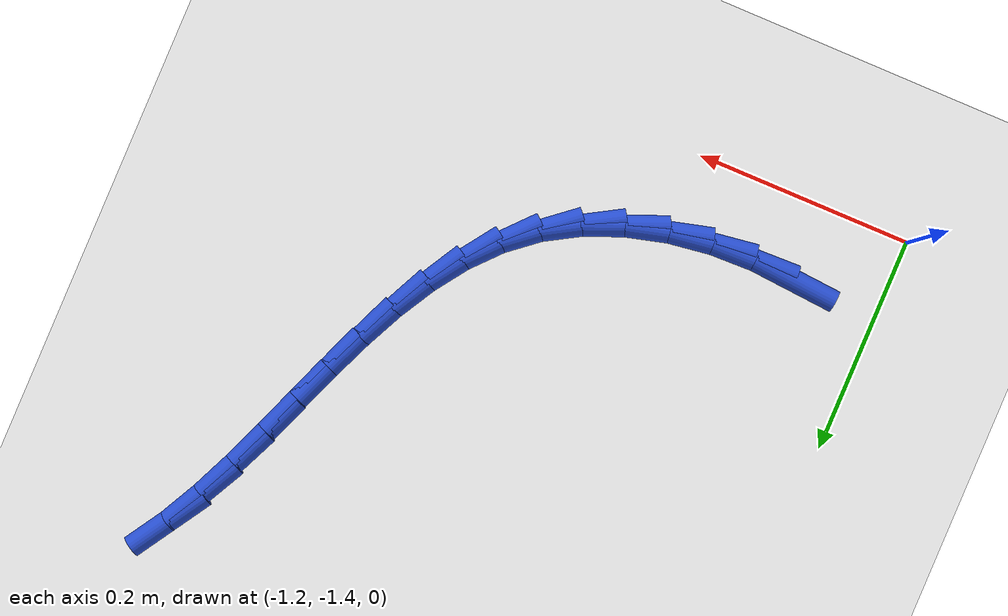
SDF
<sdf version="1.6">
 <world name="default">
  <model name="ground_plane">
   <static>1</static>
   <link name="link">
    <collision name="collision">
     <geometry><plane><normal>0 0 1</normal><size>100 100</size></plane></geometry>
     <surface><friction><ode><mu>100</mu><mu2>50</mu2></ode></friction></surface>
    </collision>
    <visual name="visual">
     <cast_shadows>0</cast_shadows>
     <geometry><plane><normal>0 0 1</normal><size>100 100</size></plane></geometry>
     <material>
      <script><uri>file://media/materials/scripts/gazebo.material</uri><name>Gazebo/WhiteGlow</name></script>
     </material>
    </visual>
   </link>
  </model>
  <model name="line">
   <link name="link_161">
    <pose>-1.120541253782351 -1.3289046032856062 0.01 0 1.57 -0.07832779690518629</pose>
    <collision name="collision">
     <geometry><cylinder><radius>0.01</radius><length>0.08</length></cylinder></geometry>
    </collision>
    <visual name="visual">
     <material>
      <script><name>Gazebo/Blue</name><uri>file://media/materials/scripts/gazebo.material</uri></script>
     </material>
     <geometry><cylinder><radius>0.01</radius><length>0.08</length></cylinder></geometry>
    </visual>
   </link>
   <link name="link_162">
    <pose>-1.0804626098823482 -1.332050311026011 0.01 0 1.57 0.03149966678447498</pose>
    <collision name="collision">
     <geometry><cylinder><radius>0.01</radius><length>0.08</length></cylinder></geometry>
    </collision>
    <visual name="visual">
     <material>
      <script><name>Gazebo/Blue</name><uri>file://media/materials/scripts/gazebo.material</uri></script>
     </material>
     <geometry><cylinder><radius>0.01</radius><length>0.08</length></cylinder></geometry>
    </visual>
   </link>
   <link name="link_163">
    <pose>-1.0400941681756766 -1.3307782978263454 0.01 0 1.57 0.14227047868223458</pose>
    <collision name="collision">
     <geometry><cylinder><radius>0.01</radius><length>0.08</length></cylinder></geometry>
    </collision>
    <visual name="visual">
     <material>
      <script><name>Gazebo/Blue</name><uri>file://media/materials/scripts/gazebo.material</uri></script>
     </material>
     <geometry><cylinder><radius>0.01</radius><length>0.08</length></cylinder></geometry>
    </visual>
   </link>
   <link name="link_164">
    <pose>-1.0003452240024857 -1.3250847302858948 0.01 0 1.57 0.25881628237013193</pose>
    <collision name="collision">
     <geometry><cylinder><radius>0.01</radius><length>0.08</length></cylinder></geometry>
    </collision>
    <visual name="visual">
     <material>
      <script><name>Gazebo/Blue</name><uri>file://media/materials/scripts/gazebo.material</uri></script>
     </material>
     <geometry><cylinder><radius>0.01</radius><length>0.08</length></cylinder></geometry>
    </visual>
   </link>
   <link name="link_165">
    <pose>-0.9621250727029274 -1.3149657750039432 0.01 0 1.57 0.38616361591741255</pose>
    <collision name="collision">
     <geometry><cylinder><radius>0.01</radius><length>0.08</length></cylinder></geometry>
    </collision>
    <visual name="visual">
     <material>
      <script><name>Gazebo/Blue</name><uri>file://media/materials/scripts/gazebo.material</uri></script>
     </material>
     <geometry><cylinder><radius>0.01</radius><length>0.08</length></cylinder></geometry>
    </visual>
   </link>
   <link name="link_166">
    <pose>-0.9263430096171503 -1.3004175985797757 0.01 0 1.57 0.5294765471716719</pose>
    <collision name="collision">
     <geometry><cylinder><radius>0.01</radius><length>0.08</length></cylinder></geometry>
    </collision>
    <visual name="visual">
     <material>
      <script><name>Gazebo/Blue</name><uri>file://media/materials/scripts/gazebo.material</uri></script>
     </material>
     <geometry><cylinder><radius>0.01</radius><length>0.08</length></cylinder></geometry>
    </visual>
   </link>
   <link name="link_167">
    <pose>-0.8939083300853052 -1.2814363676126774 0.01 0 1.57 0.6885004018710783</pose>
    <collision name="collision">
     <geometry><cylinder><radius>0.01</radius><length>0.08</length></cylinder></geometry>
    </collision>
    <visual name="visual">
     <material>
      <script><name>Gazebo/Blue</name><uri>file://media/materials/scripts/gazebo.material</uri></script>
     </material>
     <geometry><cylinder><radius>0.01</radius><length>0.08</length></cylinder></geometry>
    </visual>
   </link>
   <link name="link_168">
    <pose>-0.8655410999000331 -1.258095296434578 0.01 0 1.57 0.8363135675971844</pose>
    <collision name="collision">
     <geometry><cylinder><radius>0.01</radius><length>0.08</length></cylinder></geometry>
    </collision>
    <visual name="visual">
     <material>
      <script><name>Gazebo/Blue</name><uri>file://media/materials/scripts/gazebo.material</uri></script>
     </material>
     <geometry><cylinder><radius>0.01</radius><length>0.08</length></cylinder></geometry>
    </visual>
   </link>
   <link name="link_169">
    <pose>-0.840960616347415 -1.2308750777302797 0.01 0 1.57 0.9586425162527422</pose>
    <collision name="collision">
     <geometry><cylinder><radius>0.01</radius><length>0.08</length></cylinder></geometry>
    </collision>
    <visual name="visual">
     <material>
      <script><name>Gazebo/Blue</name><uri>file://media/materials/scripts/gazebo.material</uri></script>
     </material>
     <geometry><cylinder><radius>0.01</radius><length>0.08</length></cylinder></geometry>
    </visual>
   </link>
   <link name="link_170">
    <pose>-0.8195565681584442 -1.200390609398116 0.01 0 1.57 1.0538243028733734</pose>
    <collision name="collision">
     <geometry><cylinder><radius>0.01</radius><length>0.08</length></cylinder></geometry>
    </collision>
    <visual name="visual">
     <material>
      <script><name>Gazebo/Blue</name><uri>file://media/materials/scripts/gazebo.material</uri></script>
     </material>
     <geometry><cylinder><radius>0.01</radius><length>0.08</length></cylinder></geometry>
    </visual>
   </link>
   <link name="link_171">
    <pose>-0.8007184427335762 -1.1672568713112623 0.01 0 1.57 1.1232287030821893</pose>
    <collision name="collision">
     <geometry><cylinder><radius>0.01</radius><length>0.08</length></cylinder></geometry>
    </collision>
    <visual name="visual">
     <material>
      <script><name>Gazebo/Blue</name><uri>file://media/materials/scripts/gazebo.material</uri></script>
     </material>
     <geometry><cylinder><radius>0.01</radius><length>0.08</length></cylinder></geometry>
    </visual>
   </link>
   <link name="link_172">
    <pose>-0.7838357274732642 -1.1320888433428902 0.01 0 1.57 1.1691989068547368</pose>
    <collision name="collision">
     <geometry><cylinder><radius>0.01</radius><length>0.08</length></cylinder></geometry>
    </collision>
    <visual name="visual">
     <material>
      <script><name>Gazebo/Blue</name><uri>file://media/materials/scripts/gazebo.material</uri></script>
     </material>
     <geometry><cylinder><radius>0.01</radius><length>0.08</length></cylinder></geometry>
    </visual>
   </link>
   <link name="link_173">
    <pose>-0.768297909777964 -1.0955015053661734 0.01 0 1.57 1.1938277727343563</pose>
    <collision name="collision">
     <geometry><cylinder><radius>0.01</radius><length>0.08</length></cylinder></geometry>
    </collision>
    <visual name="visual">
     <material>
      <script><name>Gazebo/Blue</name><uri>file://media/materials/scripts/gazebo.material</uri></script>
     </material>
     <geometry><cylinder><radius>0.01</radius><length>0.08</length></cylinder></geometry>
    </visual>
   </link>
   <link name="link_174">
    <pose>-0.7534944770481287 -1.0581098372542845 0.01 0 1.57 1.1984099991461559</pose>
    <collision name="collision">
     <geometry><cylinder><radius>0.01</radius><length>0.08</length></cylinder></geometry>
    </collision>
    <visual name="visual">
     <material>
      <script><name>Gazebo/Blue</name><uri>file://media/materials/scripts/gazebo.material</uri></script>
     </material>
     <geometry><cylinder><radius>0.01</radius><length>0.08</length></cylinder></geometry>
    </visual>
   </link>
   <link name="link_175">
    <pose>-0.7388149166842131 -1.0205288188803963 0.01 0 1.57 1.1832555459314473</pose>
    <collision name="collision">
     <geometry><cylinder><radius>0.01</radius><length>0.08</length></cylinder></geometry>
    </collision>
    <visual name="visual">
     <material>
      <script><name>Gazebo/Blue</name><uri>file://media/materials/scripts/gazebo.material</uri></script>
     </material>
     <geometry><cylinder><radius>0.01</radius><length>0.08</length></cylinder></geometry>
    </visual>
   </link>
   <link name="link_176">
    <pose>-0.7236487160866715 -0.9833734301176815 0.01 0 1.57 1.147672958590758</pose>
    <collision name="collision">
     <geometry><cylinder><radius>0.01</radius><length>0.08</length></cylinder></geometry>
    </collision>
    <visual name="visual">
     <material>
      <script><name>Gazebo/Blue</name><uri>file://media/materials/scripts/gazebo.material</uri></script>
     </material>
     <geometry><cylinder><radius>0.01</radius><length>0.08</length></cylinder></geometry>
    </visual>
   </link>
   <link name="link_177">
    <pose>-0.7073853626559586 -0.9472586508393145 0.01 0 1.57 1.0900844510876735</pose>
    <collision name="collision">
     <geometry><cylinder><radius>0.01</radius><length>0.08</length></cylinder></geometry>
    </collision>
    <visual name="visual">
     <material>
      <script><name>Gazebo/Blue</name><uri>file://media/materials/scripts/gazebo.material</uri></script>
     </material>
     <geometry><cylinder><radius>0.01</radius><length>0.08</length></cylinder></geometry>
    </visual>
   </link>
   <link name="link_178">
    <pose>-0.6894143437925285 -0.9127994609184674 0.01 0 1.57 1.0083790809399154</pose>
    <collision name="collision">
     <geometry><cylinder><radius>0.01</radius><length>0.08</length></cylinder></geometry>
    </collision>
    <visual name="visual">
     <material>
      <script><name>Gazebo/Blue</name><uri>file://media/materials/scripts/gazebo.material</uri></script>
     </material>
     <geometry><cylinder><radius>0.01</radius><length>0.08</length></cylinder></geometry>
    </visual>
   </link>
  </model>
 </world>
</sdf>
